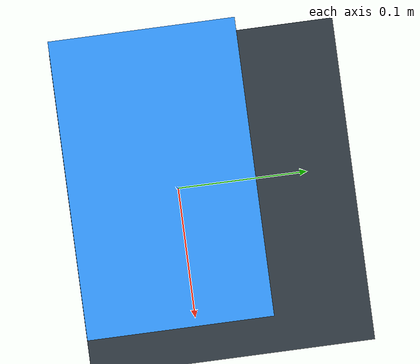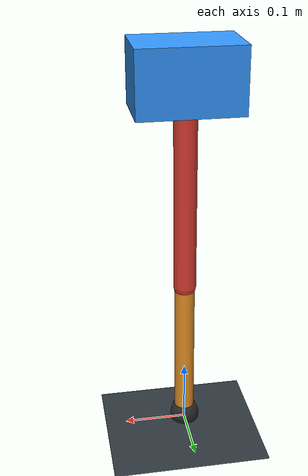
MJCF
<mujoco model="single_axis_two_bar">
  <compiler angle="radian" inertiafromgeom="true"/>
  <option timestep="0.001" integrator="implicitfast" gravity="0 0 -9.81"/>
  <default>
    <joint damping="0.08"/>
    <geom friction="1.2 0.01 0.0001" condim="3"/>
  </default>
  <worldbody>
    <geom name="floor" type="plane" size="5 5 0.1" rgba="0.18 0.22 0.25 1"/>
    <body name="carriage" pos="0 0 0.5918494228977846">
      <joint name="pole_slide" type="slide" axis="0 0 1"/>
      <geom name="payload" type="box" size="0.08 0.05 0.05" mass="2.718162017266815" rgba="0.2 0.6 1 1"/>
      <body name="thigh" pos="0 0 0">
        <joint name="hip" type="hinge" axis="0 1 0"/>
        <geom name="thigh_link" type="capsule" fromto="0 0 0 0 0 -0.3381845302888541" size="0.018" mass="0.24096094654510894" rgba="0.9 0.25 0.2 1"/>
        <body name="shank" pos="0 0 -0.3381845302888541">
          <joint name="knee" type="hinge" axis="0 1 0"/>
          <geom name="shank_link" type="capsule" fromto="0 0 0 0 0 -0.24619631805937747" size="0.016" mass="0.17541812981462535" rgba="0.95 0.6 0.15 1"/>
          <geom name="foot" type="sphere" pos="0 0 -0.24619631805937747" size="0.025" mass="0.03" rgba="0.15 0.15 0.15 1"/>
          <site name="toe" pos="0 0 -0.24619631805937747" size="0.008"/>
        </body>
      </body>
    </body>
  </worldbody>
  <actuator>
    <motor name="hip_motor" joint="hip" ctrlrange="-36.74201643799322 36.74201643799322"/>
    <motor name="knee_motor" joint="knee" ctrlrange="-70.03485388518799 70.03485388518799"/>
  </actuator>
</mujoco>
